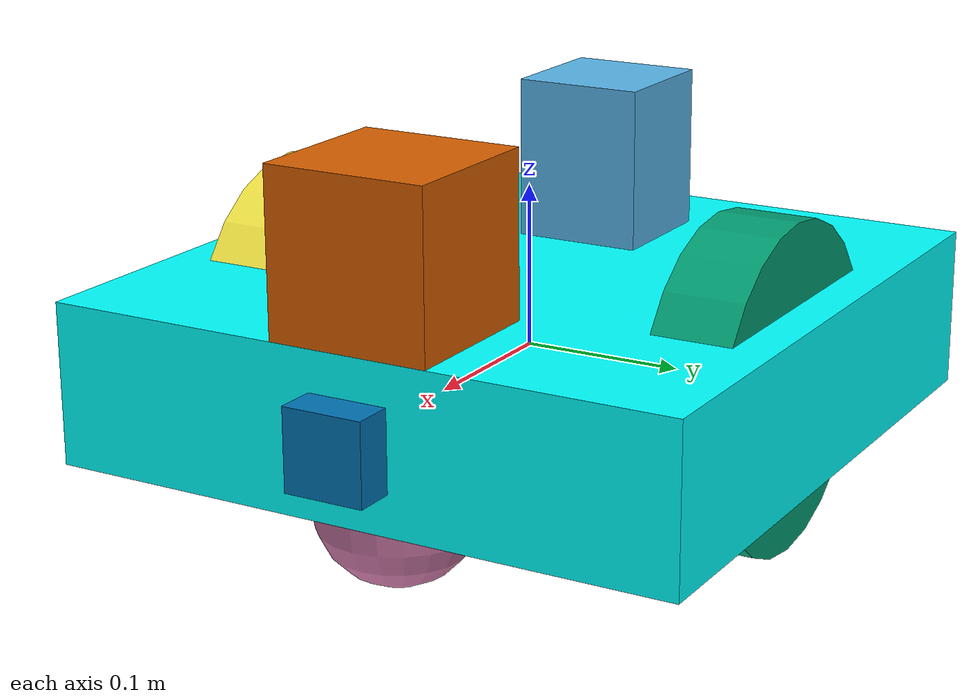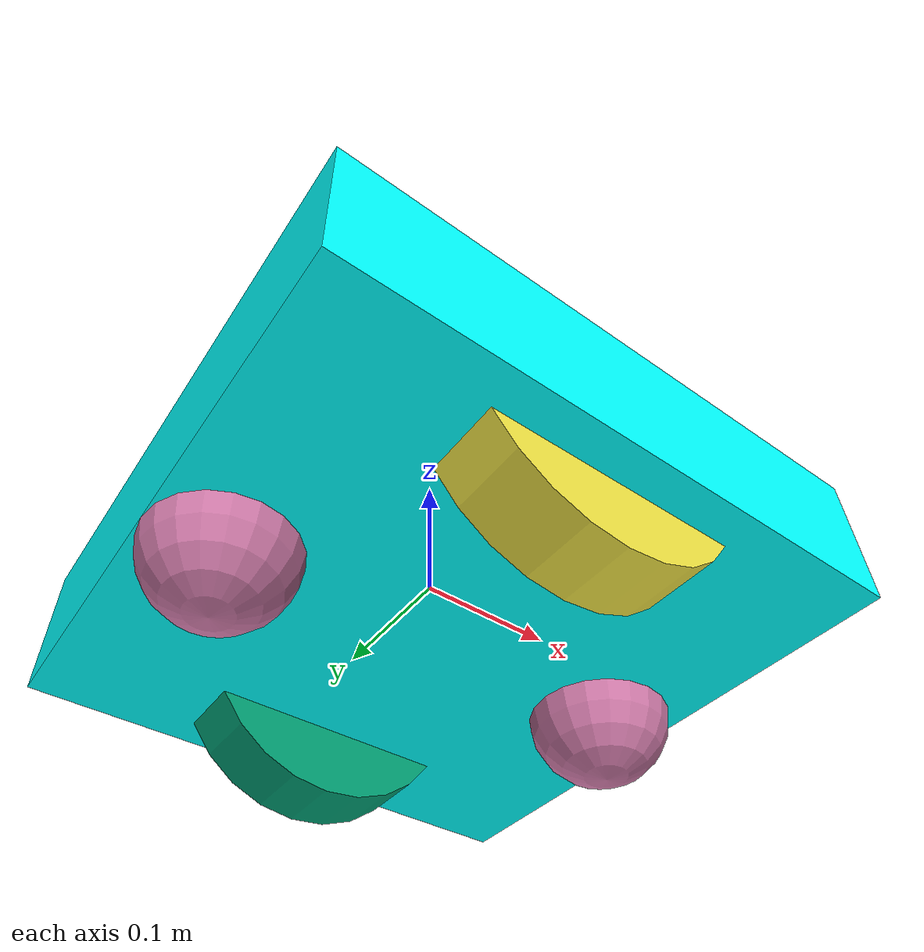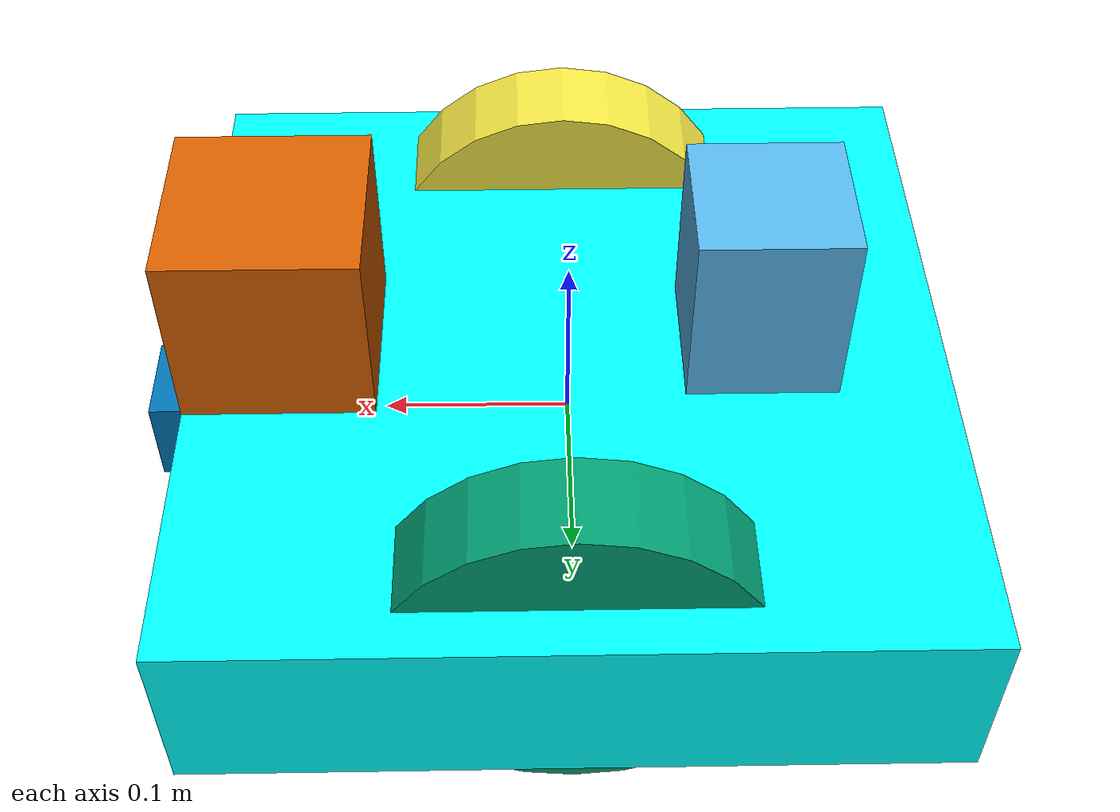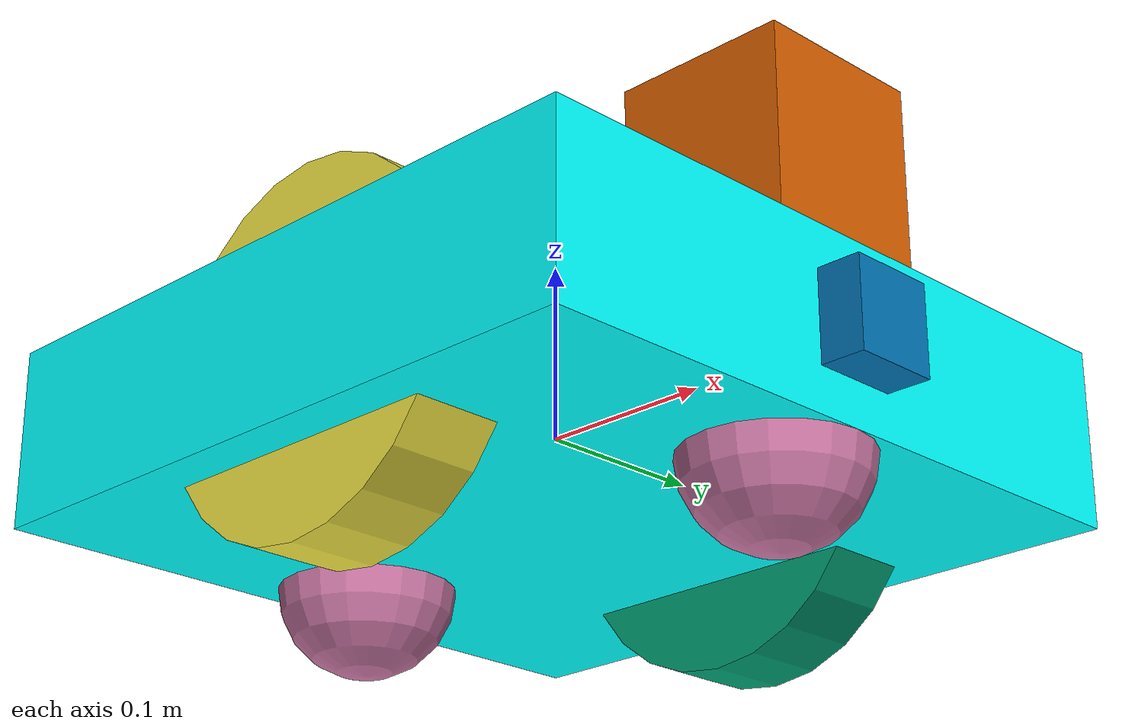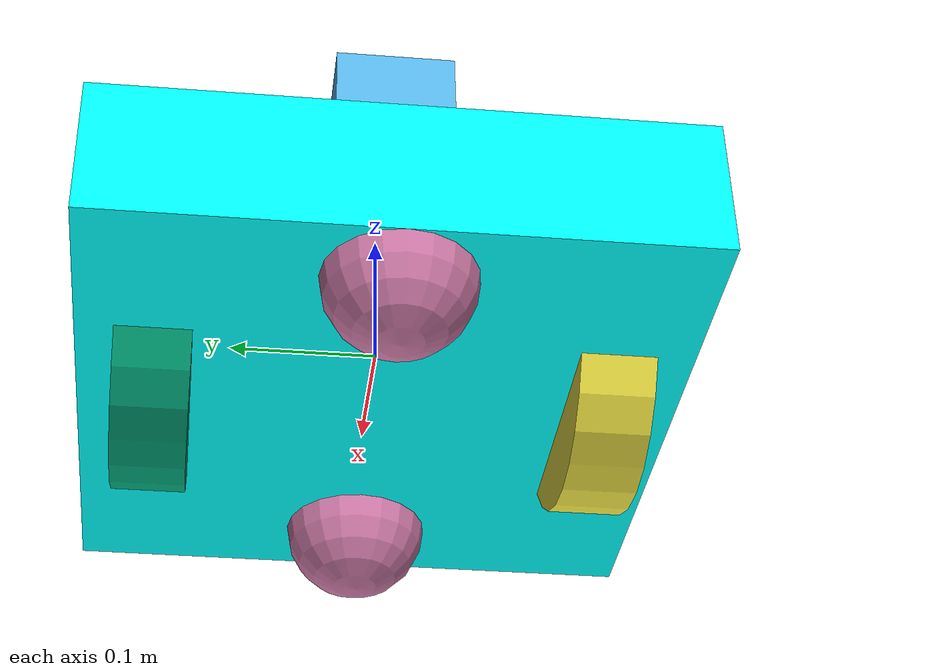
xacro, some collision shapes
<?xml version='1.0'?>

<robot name="my_robot" xmlns:xacro="http://www.ros.org/wiki/xacro">

<xacro:include filename="$(find my_robot)/urdf/my_robot.gazebo" />

  <link name="robot_footprint"></link>

  <joint name="robot_footprint_joint" type="fixed">
    <origin xyz="0 0 0" rpy="0 0 0" />
    <parent link="robot_footprint"/>
    <child link="chassis" />
  </joint>

  <link name='mid_body'>

      <collision name='mid_body_collision'>
        <origin xyz="0 0 0" rpy="0 0 0"/>
        <geometry>
          <box size=".08 .08 .1"/>
        </geometry>
      </collision>

      <visual name='mid_body_visual'>
        <origin xyz="0 0 0" rpy="0 0 0"/>
        <geometry>
          <box size=".08 .08 .1"/>
        </geometry>
      </visual>

      <inertial>
        <origin xyz="0 0 0" rpy="0 0 0"/>
        <mass value="1e-5"/>
        <inertia
          ixx="1e-6" ixy="0" ixz="0"
          iyy="1e-6" iyz="0"
          izz="1e-6"
        />
      </inertial>

  </link>

  <joint type="fixed" name="mid_body_hinge">

    <origin xyz="-0.1 0 0.1" rpy=" 0 0 0"/>
    <axis xyz="0 1 0"/>
    <child link="mid_body"/>
    <parent link="chassis"/>

  </joint>

  <link name='left_wheel'>

      <collision name='lw_collision'>
        <origin xyz="0 0 0" rpy="0 1.5707 1.5707"/>
        <geometry>
          <cylinder radius="0.1" length="0.05"/>
        </geometry>
      </collision>

      <visual name='lw_visual'>
        <origin xyz="0 0 0" rpy="0 1.5707 1.5707"/>
        <geometry>
          <cylinder radius="0.1" length="0.05"/>
        </geometry>
      </visual>

      <inertial>
        <origin xyz="0 0 0" rpy="0 1.5707 1.5707"/>
        <mass value="5"/>
        <inertia
          ixx="0.1" ixy="0" ixz="0"
          iyy="0.1" iyz="0"
          izz="0.1"
        />
      </inertial>

  </link>

  <joint type="continuous" name="left_wheel_hinge">

    <origin xyz="0 0.15 0" rpy="0 0 0"/>
    <child link="left_wheel"/>
    <parent link="chassis"/>
    <axis xyz="0 1 0" rpy="0 0 0"/>
    <limit effort="10000" velocity="1000"/>
    <dynamics damping="1.0" friction="1.0"/>

  </joint>

  <link name='right_wheel'>

      <collision name='rw_collision'>
        <origin xyz="0 0 0" rpy="0 1.5707 1.5707"/>
        <geometry>
          <cylinder radius="0.1" length="0.05"/>
        </geometry>
      </collision>

      <visual name='rw_visual'>
        <origin xyz="0 0 0" rpy="0 1.5707 1.5707"/>
        <geometry>
          <cylinder radius="0.1" length="0.05"/>
        </geometry>
      </visual>

      <inertial>
        <origin xyz="0 0 0" rpy="0 1.5707 1.5707"/>
        <mass value="5"/>
        <inertia
          ixx="0.1" ixy="0" ixz="0"
          iyy="0.1" iyz="0"
          izz="0.1"
        />
      </inertial>

  </link>

  <joint type="continuous" name="right_wheel_hinge">

    <origin xyz="0 -0.15 0" rpy="0 0 0"/>
    <child link="right_wheel"/>
    <parent link="chassis"/>
    <axis xyz="0 1 0" rpy="0 0 0"/>
    <limit effort="10000" velocity="1000"/>
    <dynamics damping="1.0" friction="1.0"/>

  </joint>

  <link name='camera'>

    <collision name='cam_collision'>
      <origin xyz="0 0 0" rpy="0 0 0"/>
      <geometry>
        <box size=".05 .05 .05"/>
      </geometry>
    </collision>

    <visual name='cam_visual'>
      <origin xyz="0 0 0" rpy="0 0 0"/>
      <geometry>
        <box size=".05 .05 .05"/>
      </geometry>
    </visual>

    <inertial>
      <origin xyz="0 0 0" rpy="0 0 0"/>
      <mass value="0.1"/>
      <inertia
        ixx="1e-6" ixy="0" ixz="0"
        iyy="1e-6" iyz="0"
        izz="1e-6"
      />
    </inertial>

    <box_inertia sizeX="0.05" sizeY="0.05" sizeZ="0.05" mass="0.1">
      <origin xyz="0 0 0" rpy="0 0 0" />
    </box_inertia>

  </link>

  <joint type='fixed' name='camera_joint'>

    <origin xyz="0.2 0 0" rpy=" 0 0 0"/>
    <axis xyz="0 1 0"/>
    <child link="camera"/>
    <parent link="chassis"/>

  </joint>

  <link name='hokuyo'>

    <collision name='lidar_collision'>
      <origin xyz="0 0 0" rpy="0 0 0"/>
      <geometry>
        <box
          size="0.1 0.1 0.1"
        />
      </geometry>
    </collision>

    <visual name='lidar_visual'>
      <origin xyz="0 0 0" rpy="0 0 0"/>
      <geometry>
        <mesh filename="package://my_robot/meshes/hokuyo.dae"/>
      </geometry>
    </visual>

    <inertial>
      <origin xyz="0 0 0" rpy="0 0 0"/>
      <mass value="1e-5"/>
      <inertia
        ixx="1e-6" ixy="0" ixz="0"
        iyy="1e-6" iyz="0"
        izz="1e-6"
      />
    </inertial>

  </link>

  <joint type='fixed' name='hokuyo_joint'>

    <origin xyz="0.15 0 0.1" rpy=" 0 0 0"/>
    <axis xyz="0 1 0"/>
    <child link="hokuyo"/>
    <parent link="chassis"/>

  </joint>

  <link name='chassis'>
    <pose>0 0 0.1 0 0 0</pose>

    <inertial>
      <mass value="15.0"/>
      <origin xyz="0.0 0 0" rpy=" 0 0 0"/>
      <inertia
          ixx="0.1" ixy="0" ixz="0"
          iyy="0.1" iyz="0"
          izz="0.1"
      />

    </inertial>

    <collision name='collision'>
      <origin xyz="0 0 0" rpy=" 0 0 0"/>
      <geometry>
        <box size=".4 .4 .1"/>
      </geometry>
    </collision>

    <visual name='chassis_visual'>
      <origin xyz="0 0 0" rpy=" 0 0 0"/>
      <geometry>
        <box size=".4 .4 .1"/>
      </geometry>
      <material name="Cyan">
        <color rgba="0 1.0 1.0 1.0"/>
      </material>
    </visual>

    <collision name='back_caster_collision'>
      <origin xyz="-0.15 0 -0.05" rpy=" 0 0 0"/>
      <geometry>
        <sphere radius="0.0499"/>
      </geometry>
    </collision>

    <visual name='back_caster_visual'>
      <origin xyz="-0.15 0 -0.05" rpy=" 0 0 0"/>
      <geometry>
        <sphere radius="0.05"/>
      </geometry>
    </visual>

    <collision name='front_caster_collision'>
      <origin xyz="0.15 0 -0.05" rpy=" 0 0 0"/>
      <geometry>
        <sphere radius="0.0499"/>
      </geometry>
    </collision>

    <visual name='front_caster_visual'>
      <origin xyz="0.15 0 -0.05" rpy=" 0 0 0"/>
      <geometry>
        <sphere radius="0.05"/>
      </geometry>
    </visual>

  </link>

</robot>
